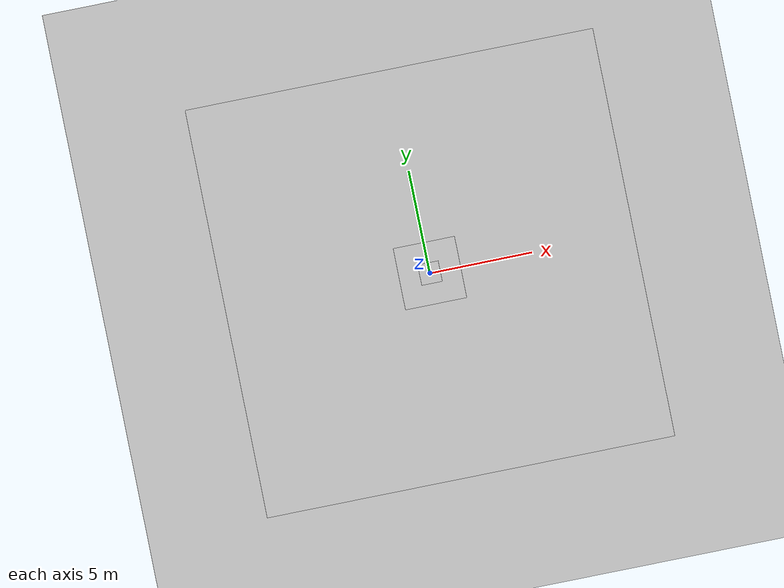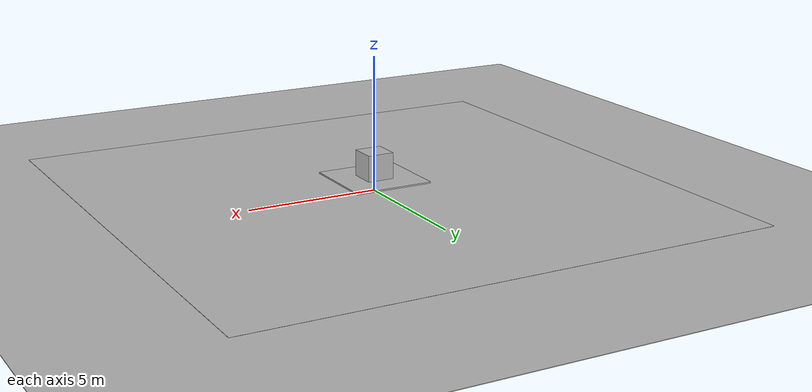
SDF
<?xml version="1.0"?>
<sdf version="1.5">
    <world name="default">
        <!-- A global light source -->
        <include>
            <uri>model://sun</uri>
        </include>
        <include>
            <uri>model://parquet_plane</uri>
            <pose>0 0 -0.01 0 0 0</pose>
        </include>

        <scene>
            <ambient>0.8 0.8 0.8 1</ambient>
            <background>0.8 0.9 1 1</background>
            <shadows>false</shadows>
            <grid>false</grid>
            <origin_visual>false</origin_visual>
        </scene>

        <model name="box">
            <pose>0 0 1.0 0 0 0</pose>
            <static>false</static>
            <link name="link">
                <inertial>
                    <mass>5</mass>
                    <inertia>
                        <!-- inertias are tricky to compute -->
                        <!-- http://gazebosim.org/tutorials?tut=inertia&cat=build_robot -->
                        <ixx>0.83</ixx> <!-- for a box: ixx = 0.083 * mass * (y*y + z*z) -->
                        <ixy>0.0</ixy> <!-- for a box: ixy = 0 -->
                        <ixz>0.0</ixz> <!-- for a box: ixz = 0 -->
                        <iyy>0.83</iyy> <!-- for a box: iyy = 0.083 * mass * (x*x + z*z) -->
                        <iyz>0.0</iyz> <!-- for a box: iyz = 0 -->
                        <izz>0.83</izz> <!-- for a box: izz = 0.083 * mass * (x*x + y*y) -->
                    </inertia>
                </inertial>

                <collision name="collision">
                    <geometry>
                        <box>
                            <size>1 1 1</size>
                        </box>
                    </geometry>
                    <surface>
                        <friction>
                            <ode>
                                <mu>0.5</mu>
                                <mu2>0.5</mu2>
                            </ode>
                        </friction>
                    </surface>
                </collision>
                <visual name="visual">
                    <geometry>
                        <box>
                            <size>1 1 1</size>
                        </box>
                    </geometry>
                </visual>
            </link>
        </model>

        <model name="plane">
            <pose>0 0 0.5 0 0 0</pose>
            <static>false</static>

            <link name="link">
                <inertial>
                    <mass>0.5</mass>
                    <inertia>
                        <!-- inertias are tricky to compute -->
                        <!-- http://gazebosim.org/tutorials?tut=inertia&cat=build_robot -->
                        <ixx>0.4</ixx> <!-- for a box: ixx = 0.083 * mass * (y*y + z*z) -->
                        <ixy>0.0</ixy> <!-- for a box: ixy = 0 -->
                        <ixz>0.0</ixz> <!-- for a box: ixz = 0 -->
                        <iyy>0.4</iyy> <!-- for a box: iyy = 0.083 * mass * (x*x + z*z) -->
                        <iyz>0.0</iyz> <!-- for a box: iyz = 0 -->
                        <izz>0.7</izz> <!-- for a box: izz = 0.083 * mass * (x*x + y*y) -->
                    </inertia>
                </inertial>
                <collision name="collision">
                    <geometry>
                        <box>
                            <size>3 3 0.05</size>
                        </box>
                    </geometry>
                    <surface>
                        <friction>
                            <ode>
                                <mu>0.5</mu>
                                <mu2>0.5</mu2>
                            </ode>
                        </friction>
                    </surface>
                </collision>
                <visual name="visual">
                    <geometry>
                        <box>
                            <size>3 3 0.05</size>
                        </box>
                    </geometry>
                </visual>
            </link>
        </model>

        <model name="plane">
            <pose>0 0 0.0 0 0 0</pose>
            <static>true</static>

            <link name="link">
                <collision name="collision">
                    <geometry>
                        <box>
                            <size>20 20 0.01</size>
                        </box>
                    </geometry>
                    <surface>
                        <friction>
                            <ode>
                                <mu>0.8</mu>
                                <mu2>0.8</mu2>
                            </ode>
                        </friction>
                    </surface>
                </collision>
                <visual name="visual">
                    <geometry>
                        <box>
                            <size>20 20 0.01</size>
                        </box>
                    </geometry>
                </visual>
            </link>
        </model>

        <physics name='default_physics' default='0' type='ode'>
            <gravity>0 0 -9.8066</gravity>
            <ode>
                <solver>
                    <type>quick</type>
                    <iters>10</iters>
                    <sor>1.3</sor>
                    <use_dynamic_moi_rescaling>0</use_dynamic_moi_rescaling>
                </solver>
                <constraints>
                    <cfm>0</cfm>
                    <erp>0.2</erp>
                    <contact_max_correcting_vel>100</contact_max_correcting_vel>
                    <contact_surface_layer>0.001</contact_surface_layer>
                </constraints>
            </ode>
            <max_step_size>0.004</max_step_size>
            <real_time_factor>1</real_time_factor>
            <real_time_update_rate>250</real_time_update_rate>
            <magnetic_field>6.0e-6 2.3e-5 -4.2e-5</magnetic_field>
        </physics>
    </world>
</sdf>

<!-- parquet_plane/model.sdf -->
<sdf version="1.5">
  <model name="parquet_plane">
    <static>true</static>
    <link name="link">
      <collision name="collision">
        <geometry>
          <box>
            <size>200 200 .02</size>
          </box>
        </geometry>
      </collision>
      <visual name="visual">
        <cast_shadows>false</cast_shadows>
        <geometry>
          <box>
            <size>200 200 .02</size>
          </box>
        </geometry>
        <material>
          <script>
            <uri>model://parquet_plane/materials/scripts</uri>
            <uri>model://parquet_plane/materials/textures</uri>
            <name>parquet</name>
          </script>
        </material>
      </visual>
    </link>
  </model>
</sdf>
